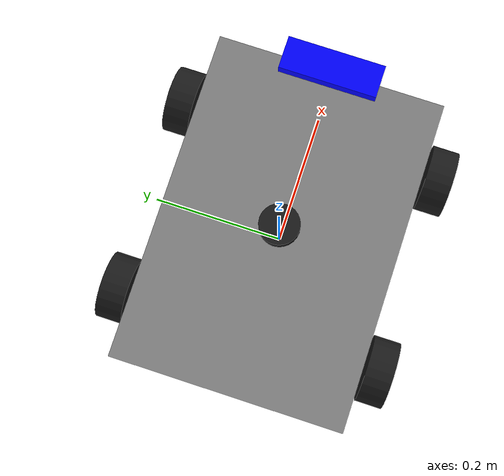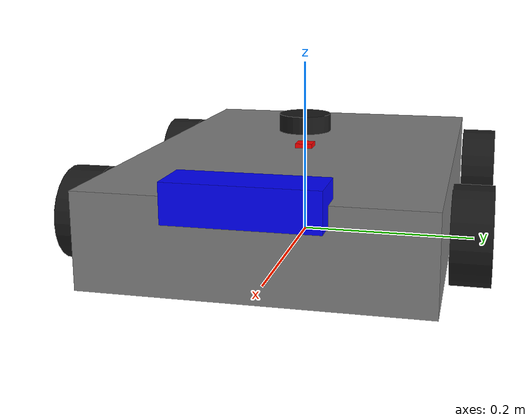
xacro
<?xml version="1.0"?>
<robot name="ugv" xmlns:xacro="http://www.ros.org/wiki/xacro">

  <!-- ===== PARAMETERS ===== -->
  <xacro:property name="base_length"  value="0.50"/>
  <xacro:property name="base_width"   value="0.35"/>
  <xacro:property name="base_height"  value="0.10"/>
  <xacro:property name="wheel_radius" value="0.05"/>
  <xacro:property name="wheel_width"  value="0.04"/>
  <xacro:property name="wheel_sep"    value="0.40"/>
  <xacro:property name="PI"           value="3.14159265"/>

  <!-- ===== BASE LINK ===== -->
  <link name="base_footprint"/>

  <joint name="base_footprint_joint" type="fixed">
    <parent link="base_footprint"/>
    <child  link="base_link"/>
    <origin xyz="0 0 ${wheel_radius}" rpy="0 0 0"/>
  </joint>

  <link name="base_link">
    <visual>
      <geometry>
        <box size="${base_length} ${base_width} ${base_height}"/>
      </geometry>
      <material name="grey">
        <color rgba="0.5 0.5 0.5 1"/>
      </material>
    </visual>
    <collision>
      <geometry>
        <box size="${base_length} ${base_width} ${base_height}"/>
      </geometry>
    </collision>
    <inertial>
      <mass value="5.0"/>
      <origin xyz="0 0 0" rpy="0 0 0"/>
      <inertia ixx="0.0507" ixy="0.0" ixz="0.0"
               iyy="0.0854" iyz="0.0"
               izz="0.1218"/>
    </inertial>
  </link>

  <!-- ===== WHEEL MACRO ===== -->
  <xacro:macro name="wheel" params="name x_pos y_pos">

    <link name="${name}_wheel">
      <visual>
        <geometry>
          <cylinder length="${wheel_width}" radius="${wheel_radius}"/>
        </geometry>
        <material name="black">
          <color rgba="0.1 0.1 0.1 1"/>
        </material>
      </visual>
      <collision>
        <geometry>
          <cylinder length="${wheel_width}" radius="${wheel_radius}"/>
        </geometry>
      </collision>
      <inertial>
        <mass value="0.5"/>
        <origin xyz="0 0 0" rpy="0 0 0"/>
        <inertia ixx="0.000260" ixy="0.0" ixz="0.0"
                 iyy="0.000260" iyz="0.0"
                 izz="0.000313"/>
      </inertial>
    </link>

    <joint name="${name}_wheel_joint" type="continuous">
      <parent link="base_link"/>
      <child  link="${name}_wheel"/>
      <origin xyz="${x_pos} ${y_pos} 0" rpy="${-PI/2} 0 0"/>
      <axis xyz="0 0 1"/>
    </joint>

  </xacro:macro>

  <!-- Instantiate 4 wheels -->
  <xacro:wheel name="fl" x_pos=" 0.15" y_pos=" ${wheel_sep/2}"/>
  <xacro:wheel name="fr" x_pos=" 0.15" y_pos="-${wheel_sep/2}"/>
  <xacro:wheel name="rl" x_pos="-0.15" y_pos=" ${wheel_sep/2}"/>
  <xacro:wheel name="rr" x_pos="-0.15" y_pos="-${wheel_sep/2}"/>

  <!-- ===== IMU ===== -->
  <link name="imu_link">
    <visual>
      <geometry><box size="0.02 0.02 0.01"/></geometry>
      <material name="red"><color rgba="1 0 0 1"/></material>
    </visual>
    <inertial>
      <mass value="0.01"/>
      <inertia ixx="0.000001" ixy="0" ixz="0"
               iyy="0.000001" iyz="0"
               izz="0.000001"/>
    </inertial>
  </link>

  <joint name="imu_joint" type="fixed">
    <parent link="base_link"/>
    <child  link="imu_link"/>
    <origin xyz="0.0 0.0 0.05" rpy="0 0 0"/>
  </joint>

  <!-- ===== LIDAR (for Nav2 costmap) ===== -->
  <link name="lidar_link">
    <visual>
      <geometry><cylinder length="0.02" radius="0.03"/></geometry>
      <material name="black"><color rgba="0.1 0.1 0.1 1"/></material>
    </visual>
    <inertial>
      <mass value="0.05"/>
      <inertia ixx="0.000001" ixy="0" ixz="0"
               iyy="0.000001" iyz="0"
               izz="0.000001"/>
    </inertial>
  </link>

  <joint name="lidar_joint" type="fixed">
    <parent link="base_link"/>
    <child  link="lidar_link"/>
    <origin xyz="0.0 0.0 0.08" rpy="0 0 0"/>
  </joint>

  <!-- ===== STEREO CAMERA MOUNT ===== -->
  <link name="camera_link">
    <visual>
      <geometry><box size="0.05 0.15 0.04"/></geometry>
      <material name="blue"><color rgba="0.0 0.0 1.0 1"/></material>
    </visual>
    <inertial>
      <mass value="0.1"/>
      <inertia ixx="0.0001" ixy="0" ixz="0"
               iyy="0.0001" iyz="0"
               izz="0.0001"/>
    </inertial>
  </link>

  <joint name="camera_joint" type="fixed">
    <parent link="base_link"/>
    <child  link="camera_link"/>
    <origin xyz="0.25 0.0 0.05" rpy="0 0 0"/>
  </joint>

  <!-- Left camera optical frame -->
  <link name="camera_left_link"/>
  <joint name="camera_left_joint" type="fixed">
    <parent link="camera_link"/>
    <child  link="camera_left_link"/>
    <origin xyz="0 0.06 0" rpy="${-PI/2} 0 ${-PI/2}"/>
  </joint>

  <!-- Right camera optical frame -->
  <link name="camera_right_link"/>
  <joint name="camera_right_joint" type="fixed">
    <parent link="camera_link"/>
    <child  link="camera_right_link"/>
    <origin xyz="0 -0.06 0" rpy="${-PI/2} 0 ${-PI/2}"/>
  </joint>

  <!-- ===== GAZEBO MATERIAL COLORS ===== -->
  <gazebo reference="base_link">
    <material>Gazebo/Grey</material>
  </gazebo>
  <gazebo reference="fl_wheel"><material>Gazebo/Black</material></gazebo>
  <gazebo reference="fr_wheel"><material>Gazebo/Black</material></gazebo>
  <gazebo reference="rl_wheel"><material>Gazebo/Black</material></gazebo>
  <gazebo reference="rr_wheel"><material>Gazebo/Black</material></gazebo>

  <!-- ===== GZ SIM PLUGINS (Harmonic) ===== -->

  <!-- Differential drive controller -->
  <gazebo>
    <plugin filename="gz-sim-diff-drive-system"
            name="gz::sim::systems::DiffDrive">
      <left_joint>fl_wheel_joint</left_joint>
      <left_joint>rl_wheel_joint</left_joint>
      <right_joint>fr_wheel_joint</right_joint>
      <right_joint>rr_wheel_joint</right_joint>
      <wheel_separation>${wheel_sep}</wheel_separation>
      <wheel_radius>${wheel_radius}</wheel_radius>
      <odom_publish_frequency>30</odom_publish_frequency>
      <topic>cmd_vel</topic>
      <odom_topic>odom</odom_topic>
      <frame_id>odom</frame_id>
      <child_frame_id>base_footprint</child_frame_id>
    </plugin>
  </gazebo>

  <!-- Joint state publisher -->
  <gazebo>
    <plugin filename="gz-sim-joint-state-publisher-system"
            name="gz::sim::systems::JointStatePublisher">
    </plugin>
  </gazebo>

  <!-- IMU sensor -->
  <gazebo reference="imu_link">
    <sensor name="imu_sensor" type="imu">
      <always_on>true</always_on>
      <update_rate>100</update_rate>
      <topic>imu/data</topic>
      <gz_frame_id>imu_link</gz_frame_id>
    </sensor>
  </gazebo>

  <!-- Lidar sensor for Nav2 costmap -->
  <gazebo reference="lidar_link">
    <sensor name="lidar" type="gpu_lidar">
      <always_on>true</always_on>
      <update_rate>10</update_rate>
      <topic>scan</topic>
      <gz_frame_id>lidar_link</gz_frame_id>
      <lidar>
        <scan>
          <horizontal>
            <samples>360</samples>
            <resolution>1</resolution>
            <min_angle>-3.14159</min_angle>
            <max_angle>3.14159</max_angle>
          </horizontal>
        </scan>
        <range>
          <min>0.1</min>
          <max>10.0</max>
          <resolution>0.01</resolution>
        </range>
      </lidar>
    </sensor>
  </gazebo>

  <!-- Left camera -->
  <gazebo reference="camera_left_link">
    <sensor name="camera_left" type="camera">
      <always_on>true</always_on>
      <update_rate>30</update_rate>
      <topic>camera/left/image_raw</topic>
      <gz_frame_id>camera_left_link</gz_frame_id>
      <camera>
        <horizontal_fov>1.3962634</horizontal_fov>
        <image>
          <width>640</width>
          <height>480</height>
          <format>RGB_INT8</format>
        </image>
        <clip><near>0.02</near><far>30.0</far></clip>
        <lens>
          <intrinsics>
            <fx>381.361</fx>
            <fy>381.361</fy>
            <cx>320.0</cx>
            <cy>240.0</cy>
            <s>0</s>
          </intrinsics>
        </lens>
      </camera>
    </sensor>
  </gazebo>

  <!-- Right camera -->
  <gazebo reference="camera_right_link">
    <sensor name="camera_right" type="camera">
      <always_on>true</always_on>
      <update_rate>30</update_rate>
      <topic>camera/right/image_raw</topic>
      <gz_frame_id>camera_right_link</gz_frame_id>
      <camera>
        <horizontal_fov>1.3962634</horizontal_fov>
        <image>
          <width>640</width>
          <height>480</height>
          <format>RGB_INT8</format>
        </image>
        <clip><near>0.02</near><far>30.0</far></clip>
        <lens>
          <intrinsics>
            <fx>381.361</fx>
            <fy>381.361</fy>
            <cx>320.0</cx>
            <cy>240.0</cy>
            <s>0</s>
          </intrinsics>
        </lens>
      </camera>
    </sensor>
  </gazebo>

</robot>
